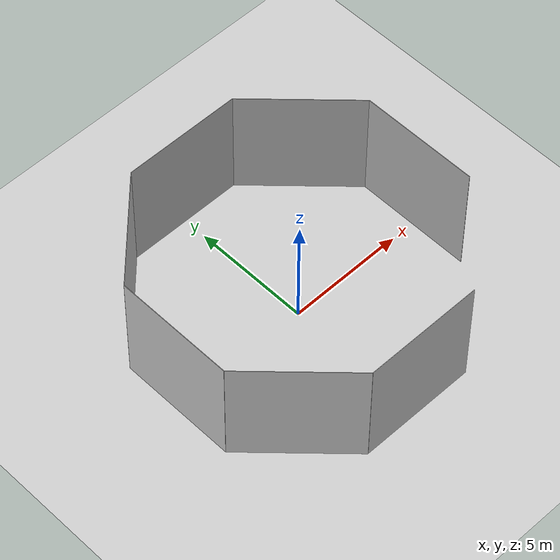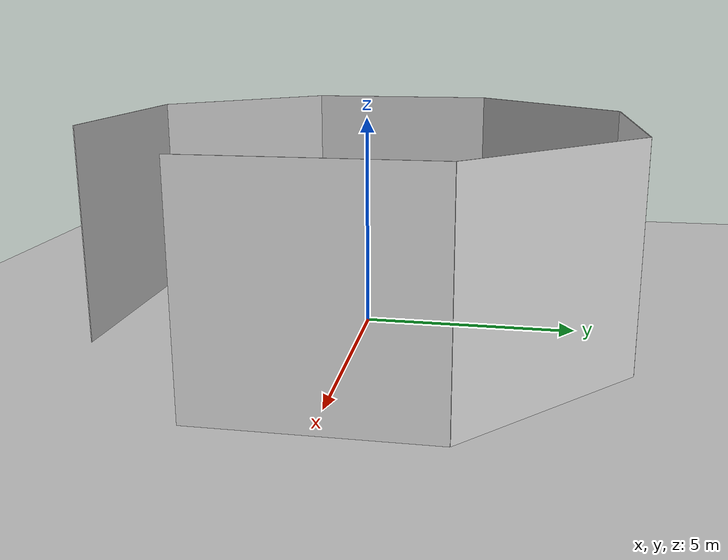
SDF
<?xml version="1.0"?>
<sdf version="1.4">
  <world name="target">
    <include>
      <uri>model://ground_plane</uri>
    </include>
    <include>
      <uri>model://sun</uri>
    </include>

    <light name="inner_point_white1" type="point">
      <pose>0 0 6 0 0 0</pose>
      <diffuse>0.5 0.5 0.5 1</diffuse>
      <specular>0.1 0.1 0.1 1</specular>
      <attenuation>
        <range>20</range>
        <linear>0.1</linear>
        <constant>0.2</constant>
        <quadratic>0</quadratic>
      </attenuation>
      <cast_shadows>0</cast_shadows>
      <direction>0 0 -1</direction>
    </light>
    <model name="targetN">
      <pose>6.036 0 2.5  1.5708 0 -1.5708</pose>
        <static>true</static>
        <link name="body">
          <visual name="visual">
            <geometry>
              <mesh>
                <uri>model://full_target.dae</uri>
                <scale> 0.01 0.01 0.01 </scale>
              </mesh>
            </geometry>
          </visual>
          <collision name="collision">
            <geometry>
              <mesh>
                <uri>model://full_target.dae</uri>
                <scale> 0.01 0.01 0.01 </scale>
              </mesh>
            </geometry>
          </collision>
        </link>
    </model>
    <model name="targetNE">
      <pose>4.2681 4.2681 2.5  1.5708 0 -0.7854</pose>
        <static>true</static>
        <link name="body">
          <visual name="visual">
            <geometry>
              <mesh>
                <uri>model://full_target.dae</uri>
                <scale> 0.01 0.01 0.01 </scale>
              </mesh>
            </geometry>
          </visual>
           <collision name="collision">
            <geometry>
              <mesh>
                <uri>model://full_target.dae</uri>
                <scale> 0.01 0.01 0.01 </scale>
              </mesh>
            </geometry>
          </collision>
        </link>
    </model>
    <model name="targetE">
      <pose>0 6.036 2.5  1.5708 0 0</pose>
      <static>true</static>
      <link name="body">
        <visual name="visual">
          <geometry>
            <mesh>
              <uri>model://full_target.dae</uri>
              <scale> 0.01 0.01 0.01 </scale>
            </mesh>
          </geometry>
        </visual>
         <collision name="collision">
            <geometry>
              <mesh>
                <uri>model://full_target.dae</uri>
                <scale> 0.01 0.01 0.01 </scale>
              </mesh>
            </geometry>
          </collision>
      </link>
    </model>
    <model name="targetSE">
      <pose>-4.2681 4.2681 2.5  1.5708 0 0.7854</pose>
      <static>true</static>
      <link name="body">
        <visual name="visual">
          <geometry>
            <mesh>
              <uri>model://full_target.dae</uri>
              <scale> 0.01 0.01 0.01 </scale>
            </mesh>
          </geometry>
        </visual>
         <collision name="collision">
            <geometry>
              <mesh>
                <uri>model://full_target.dae</uri>
                <scale> 0.01 0.01 0.01 </scale>
              </mesh>
            </geometry>
          </collision>
      </link>
    </model>
    <model name="targetS">
      <pose>-6.036 0 2.5  1.5708 0 1.5708</pose>
      <static>true</static>
      <link name="body">
        <visual name="visual">
          <geometry>
            <mesh>
              <uri>model://full_target.dae</uri>
              <scale> 0.01 0.01 0.01 </scale>
            </mesh>
          </geometry>
        </visual>
         <collision name="collision">
            <geometry>
              <mesh>
                <uri>model://full_target.dae</uri>
                <scale> 0.01 0.01 0.01 </scale>
              </mesh>
            </geometry>
          </collision>
      </link>
    </model>
    <model name="targetSW">
      <pose>-4.2681 -4.2681 2.5  1.5708 0 2.3562</pose>
      <static>true</static>
      <link name="body">
        <visual name="visual">
          <geometry>
            <mesh>
              <uri>model://full_target.dae</uri>
              <scale> 0.01 0.01 0.01 </scale>
            </mesh>
          </geometry>
        </visual>
         <collision name="collision">
            <geometry>
              <mesh>
                <uri>model://full_target.dae</uri>
                <scale> 0.01 0.01 0.01 </scale>
              </mesh>
            </geometry>
          </collision>
      </link>
    </model>
    <model name="targetW">
      <pose>0 -6.036 2.5  1.5708 0 3.14159</pose>
        <static>true</static>
        <link name="body">
          <visual name="visual">
            <geometry>
              <mesh>
                <uri>model://full_target.dae</uri>
                <scale> 0.01 0.01 0.01 </scale>
              </mesh>
            </geometry>
          </visual>
           <collision name="collision">
            <geometry>
              <mesh>
                <uri>model://full_target.dae</uri>
                <scale> 0.01 0.01 0.01 </scale>
              </mesh>
            </geometry>
          </collision>
        </link>
    </model>

  </world>
</sdf>
